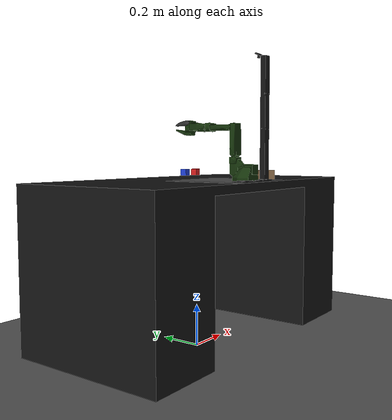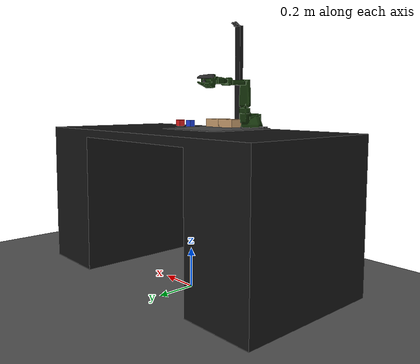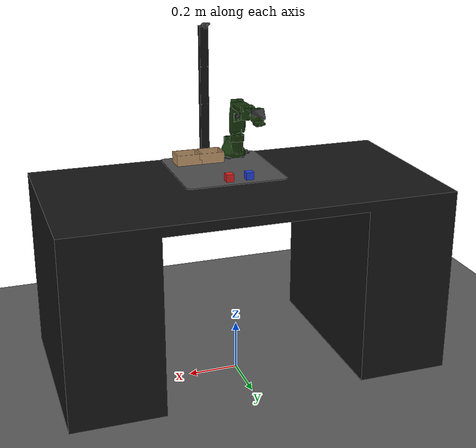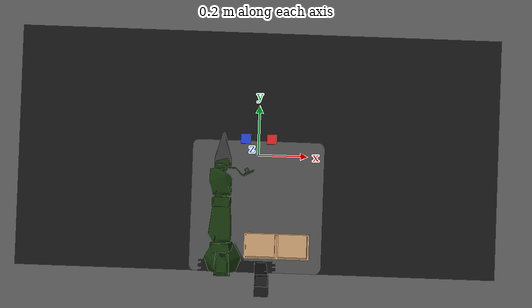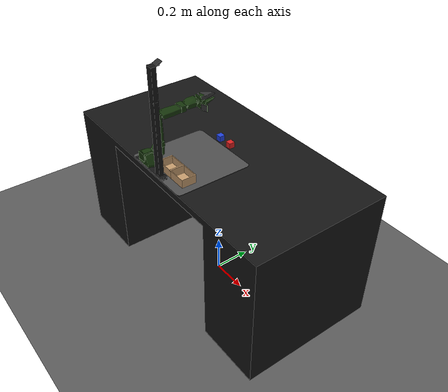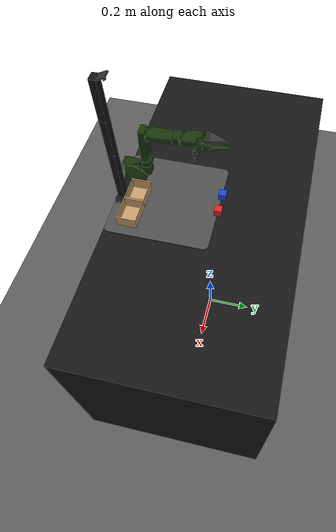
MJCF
<mujoco model="sorting">
  <!--
    Task: sort red cube into right box, blue cube into left box.
    Success: 0.25 per cube grasped, 0.25 per cube correctly sorted (max 1.0).
  -->
  <include file="world_base.xml"/>

  <asset>
    <material name="mat_cube_red"  rgba="0.85 0.12 0.12 1"/>
    <material name="mat_cube_blue" rgba="0.12 0.25 0.85 1"/>
    <material name="mat_box"       rgba="0.76 0.60 0.42 1"/>
  </asset>

  <worldbody>
    <!-- ── Red cube ──────────────────────────────────────────────────── -->
    <body name="cube_red" pos="0.04 0.04 0.845">
      <freejoint name="cube_red_joint"/>
      <geom name="cube_red_geom" type="box" size="0.015 0.015 0.015"
            material="mat_cube_red" mass="0.05"
            contype="1" conaffinity="1" condim="4"/>
    </body>

    <!-- ── Blue cube ─────────────────────────────────────────────────── -->
    <body name="cube_blue" pos="-0.04 0.04 0.845">
      <freejoint name="cube_blue_joint"/>
      <geom name="cube_blue_geom" type="box" size="0.015 0.015 0.015"
            material="mat_cube_blue" mass="0.05"
            contype="1" conaffinity="1" condim="4"/>
    </body>

    <!-- ── Target box (left side) ──────────────────────────────────── -->
    <body name="box_right" pos="0.05 -0.33 0.812">
      <!-- OBJ visual: pos centres mesh on body origin, bottom at body z -->
      <geom name="right_box_virtual" type="mesh" mesh="box_mesh"
            euler="1.5708 0 0" pos="-0.821 -0.039 -0.743"
            rgba="0.76 0.60 0.42 1" contype="0" conaffinity="0"/>
      <!-- Invisible collision: bottom + walls -->
      <geom name="right_box_bottom"     type="box" size="0.0475 0.0355 0.003" pos="-0.032 0.038 0.003"        rgba="0 0 0 0" contype="1" conaffinity="1" friction="0.3 0.05 0.01"/>
      <geom name="right_box_wall_front" type="box" size="0.0475 0.003 0.022" pos="-0.032  0.0772 0.025" rgba="0 0 0 0" contype="1" conaffinity="1" friction="0.1 0.01 0.001"/>
      <geom name="right_box_wall_back"  type="box" size="0.0475 0.003 0.022" pos="-0.032  0.0032 0.025" rgba="0 0 0 0" contype="1" conaffinity="1" friction="0.1 0.01 0.001"/>
      <geom name="right_box_wall_left"  type="box" size="0.003 0.0355 0.022" pos="-0.081 0.0402 0.025" rgba="0 0 0 0" contype="1" conaffinity="1" friction="0.1 0.01 0.001"/>
      <geom name="right_box_wall_right" type="box" size="0.003 0.0355 0.022" pos="0.018 0.0402 0.025" rgba="0 0 0 0" contype="1" conaffinity="1" friction="0.1 0.01 0.001"/>
    </body>

    <!-- ── Target box (right side) ──────────────────────────────────── -->
    <body name="box_left" pos="0.145 -0.33 0.812">
      <!-- OBJ visual: pos centres mesh on body origin, bottom at body z -->
      <geom name="left_box_visual" type="mesh" mesh="box_mesh"
            euler="1.5708 0 0" pos="-0.821 -0.039 -0.743"
            rgba="0.76 0.60 0.42 1" contype="0" conaffinity="0"/>
      <!-- Invisible collision: bottom + walls -->
      <geom name="left_box_bottom"     type="box" size="0.0475 0.0355 0.003" pos="-0.032 0.038 0.003"        rgba="0 0 0 0" contype="1" conaffinity="1" friction="0.3 0.05 0.01"/>
      <geom name="left_box_wall_front" type="box" size="0.0475 0.003 0.022" pos="-0.032  0.0772 0.025" rgba="0 0 0 0" contype="1" conaffinity="1" friction="0.1 0.01 0.001"/>
      <geom name="left_box_wall_back"  type="box" size="0.0475 0.003 0.022" pos="-0.032  0.0032 0.025" rgba="0 0 0 0" contype="1" conaffinity="1" friction="0.1 0.01 0.001"/>
      <geom name="left_box_wall_left"  type="box" size="0.003 0.0355 0.022" pos="-0.081 0.0402 0.025" rgba="0 0 0 0" contype="1" conaffinity="1" friction="0.1 0.01 0.001"/>
      <geom name="left_box_wall_right" type="box" size="0.003 0.0355 0.022" pos="0.018 0.0402 0.025" rgba="0 0 0 0" contype="1" conaffinity="1" friction="0.1 0.01 0.001"/>
    </body>
  </worldbody>

</mujoco>

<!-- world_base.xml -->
<mujoco model="so101_world_base">
  <!-- meshdir now points to assets/ so both so101/ and world/meshes/ are accessible -->
  <compiler angle="radian" autolimits="true" meshdir="../assets"/>

  <option timestep="0.002" gravity="0 0 -9.81" integrator="implicitfast"/>

  <default>
    <joint damping="1.0" armature="0.1"/>
    <geom condim="6" friction="4.0 0.1 0.01" solimp="0.99 0.999 0.001" solref="0.01 1"/>
    <position kp="100" kv="20"/>
  </default>

  <asset>
    <!-- ── Floor texture ────────────────────────────────────────────── -->
    <texture name="tex_floor" type="2d" builtin="checker"
             rgb1="0.3 0.3 0.3" rgb2="0.4 0.4 0.4" width="64" height="64"/>
    <material name="mat_floor" texture="tex_floor" texrepeat="4 4"/>

    <mesh name="desk"                file="world/meshes/desk.obj"                inertia="shell"/>
    <mesh name="desk_mat_mesh"       file="world/meshes/desk_mat.obj"            inertia="shell"/>
    <mesh name="cam_overhead_holder" file="world/meshes/cam_overhead_holder.obj" inertia="shell"/>
    <mesh name="cam_overhead_mesh"   file="world/meshes/cam_overhead.obj"        inertia="shell"/>
    <mesh name="box_mesh"            file="world/meshes/box.obj"                 inertia="shell"/>

    <!-- ── SO-101 meshes ─────────────────────────────────────────────── -->
    <mesh name="base_motor_holder_so101_v1"        file="so101/base_motor_holder_so101_v1.stl"/>
    <mesh name="base_so101_v2"                     file="so101/base_so101_v2.stl"/>
    <mesh name="sts3215_03a_v1"                    file="so101/sts3215_03a_v1.stl"/>
    <mesh name="waveshare_mounting_plate_so101_v2" file="so101/waveshare_mounting_plate_so101_v2.stl"/>
    <mesh name="motor_holder_so101_base_v1"        file="so101/motor_holder_so101_base_v1.stl"/>
    <mesh name="rotation_pitch_so101_v1"           file="so101/rotation_pitch_so101_v1.stl"/>
    <mesh name="upper_arm_so101_v1"                file="so101/upper_arm_so101_v1.stl"/>
    <mesh name="under_arm_so101_v1"                file="so101/under_arm_so101_v1.stl"/>
    <mesh name="motor_holder_so101_wrist_v1"       file="so101/motor_holder_so101_wrist_v1.stl"/>
    <mesh name="sts3215_03a_no_horn_v1"            file="so101/sts3215_03a_no_horn_v1.stl"/>
    <mesh name="wrist_roll_pitch_so101_v2"         file="so101/wrist_roll_pitch_so101_v2.stl"/>
    <mesh name="wrist_roll_follower_so101_v1"      file="so101/wrist_roll_follower_so101_v1_cam.stl"/>
    <mesh name="moving_jaw_so101_v1"               file="so101/moving_jaw_so101_v1.stl"/>
    <mesh name="wrist_cam"                         file="so101/wrist_cam.stl"/>
  </asset>

  <worldbody>
    <!-- ── Lighting ──────────────────────────────────────────────────── -->
    <light name="light_overhead" pos="0 0 2.0" dir="0 0 -1"
           diffuse="0.8 0.8 0.8" specular="0.2 0.2 0.2" castshadow="true"/>
    <light name="light_fill" pos="-0.8 0.5 1.5" dir="0.5 -0.3 -1"
           diffuse="0.3 0.3 0.3" specular="0.0 0.0 0.0" castshadow="false"/>

    <!-- ── Floor ─────────────────────────────────────────────────────── -->
    <geom name="floor" type="plane" size="2 2 0.1" material="mat_floor"
          contype="1" conaffinity="1"/>

    <!-- ── Desk: OBJ visual + invisible collision surface ───────────────
         euler="1.5708 0 0" rotates Y-up OBJ → Z-up MuJoCo
         pos="-0.75 -0.375 0.07" centres desk and puts top at z=0.81     -->
    <geom name="desk_visual" type="mesh" mesh="desk"
          euler="1.5708 0 0" pos="-0.75 -0.375 0.07"
          rgba="0.08 0.08 0.08 1" contype="0" conaffinity="0"/>
    <geom name="desk_collision" type="box" size="0.75 0.375 0.005"
          pos="0 0 0.805" rgba="0 0 0 0" contype="1" conaffinity="1"/>

    <!-- ── Mat: OBJ visual + invisible collision surface ─────────────── -->
    <geom name="mat_visual" type="mesh" mesh="desk_mat_mesh"
          euler="1.5708 0 0" pos="-0.75 -0.375 0.07"
          rgba="0.302 0.302 0.302 1" contype="0" conaffinity="0"/>
    <geom name="mat_collision" type="cylinder" size="0.18 0.002"
          pos="0 0 0.812" rgba="0 0 0 0" contype="1" conaffinity="1"/>

    <!-- ── Camera holder: OBJ visual only ────────────────────────────── -->
    <geom name="cam_overhead_holder_visual" type="mesh" mesh="cam_overhead_holder"
          euler="1.5708 0 0" pos="-0.75 -0.375 0.07"
          rgba="0.078 0.078 0.078 1" contype="0" conaffinity="0"/>

    <!-- ── Overhead camera body: OBJ visual only ─────────────────────── -->
    <geom name="cam_overhead_visual" type="mesh" mesh="cam_overhead_mesh"
          euler="1.5708 0 0" pos="-0.75 -0.375 0.07"
          rgba="0.15 0.15 0.15 1" contype="0" conaffinity="0"/>

    <!-- ── SO-101 robot ───────────────────────────────────────────────
         pos: robot mount point on desk surface (z=0.81).              -->
    <body name="robot_base" pos="-0.1 -0.35 0.818" euler="0 0 1.5708">
      <geom pos="-0.00636471 -9.94414e-05 -0.0024" quat="0.499998 0.5 0.500002 0.5"
            type="mesh" rgba="0.08 0.2 0.04 1" mesh="base_motor_holder_so101_v1"/>
      <geom pos="-0.00636471 -8.97657e-09 -0.0024" quat="0.499998 0.5 0.500002 0.5"
            type="mesh" rgba="0.08 0.2 0.04 1" mesh="base_so101_v2"/>
      <geom pos="0.0263353 -8.97657e-09 0.0437" quat="1 0 0 0"
            type="mesh" rgba="0.08 0.2 0.04 1" mesh="sts3215_03a_v1"/>
      <geom pos="-0.0309827 -0.000199441 0.0474" quat="0.499998 0.5 0.500002 0.5"
            type="mesh" rgba="0.08 0.2 0.04 1" mesh="waveshare_mounting_plate_so101_v2"/>

      <body name="shoulder_link" pos="0.0388353 -8.97657e-09 0.0624"
            quat="1.76036e-12 1.32679e-06 -1 -1.32679e-06">
        <inertial pos="-0.0307604 -1.66727e-05 -0.0252713"
                  quat="0.999865 0.00149563 0.0097084 0.0132043"
                  mass="0.100006" diaginertia="8.37836e-05 8.10388e-05 2.39552e-05"/>
        <joint name="shoulder_pan" pos="0 0 0" axis="0 0 1"
               range="-1.91986 1.91986" actuatorfrcrange="-50 50"/>
        <geom pos="-0.0303992 0.000422241 -0.0417" quat="0.499998 0.5 0.5 -0.500002"
              type="mesh" rgba="0.08 0.2 0.04 1" mesh="sts3215_03a_v1"/>
        <geom pos="-0.0675992 -0.000177759 0.0158499" quat="0.499998 0.5 -0.5 0.500002"
              type="mesh" rgba="0.08 0.2 0.04 1" mesh="motor_holder_so101_base_v1"/>
        <geom pos="0.0122008 2.22413e-05 0.0464" quat="0.707105 -0.707108 0 0"
              type="mesh" rgba="0.08 0.2 0.04 1" mesh="rotation_pitch_so101_v1"/>

        <body name="upper_arm_link" pos="-0.0303992 -0.0182778 -0.0542"
              quat="0.499998 -0.5 -0.5 -0.500002">
          <inertial pos="-0.0898471 -0.00838224 0.0184089"
                    quat="0.453195 0.454063 0.541891 0.542951"
                    mass="0.103" diaginertia="0.000150873 0.000142487 3.72451e-05"/>
          <joint name="shoulder_lift" pos="0 0 0" axis="0 0 1"
                 range="-1.74533 1.74533" actuatorfrcrange="-10 10"/>
          <geom pos="-0.11257 -0.0155 0.0187"
                quat="9.38184e-07 -0.707105 0.707108 -9.38187e-07"
                type="mesh" rgba="0.08 0.2 0.04 1" mesh="sts3215_03a_v1"/>
          <geom pos="-0.065085 0.012 0.0182" quat="1.32679e-06 1 0 0"
                type="mesh" rgba="0.08 0.2 0.04 1" mesh="upper_arm_so101_v1"/>

          <body name="lower_arm_link" pos="-0.11257 -0.028 0" quat="0.707105 0 0 0.707108">
            <inertial pos="-0.0980701 0.00324376 0.0182831"
                      quat="0.510729 0.517006 0.487966 0.483477"
                      mass="0.104" diaginertia="0.000160262 0.000145304 2.83125e-05"/>
            <joint name="elbow_flex" pos="0 0 0" axis="0 0 1"
                   range="-1.69 1.69" actuatorfrcrange="-10 10"/>
            <geom pos="-0.0648499 -0.032 0.0182" quat="1.32679e-06 1 0 0"
                  type="mesh" rgba="0.08 0.2 0.04 1" mesh="under_arm_so101_v1"/>
            <geom pos="-0.0648499 -0.032 0.018" quat="1.32679e-06 -1 0 0"
                  type="mesh" rgba="0.08 0.2 0.04 1" mesh="motor_holder_so101_wrist_v1"/>
            <geom pos="-0.1224 0.0052 0.0187"
                  quat="1.76034e-12 -1.32679e-06 1 -1.32679e-06"
                  type="mesh" rgba="0.08 0.2 0.04 1" mesh="sts3215_03a_v1"/>

            <body name="wrist_link" pos="-0.1349 0.0052 0" quat="0.707105 0 0 -0.707108">
              <inertial pos="-0.000103312 -0.0386143 0.0281156"
                        quat="0.967143 0.254226 0.00162226 -0.000146307"
                        mass="0.079" diaginertia="3.68265e-05 2.74474e-05 1.89434e-05"/>
              <joint name="wrist_flex" pos="0 0 0" axis="0 0 1"
                     range="-1.65806 1.65806" actuatorfrcrange="-10 10"/>
              <geom pos="0 -0.0424 0.0306" quat="0.499998 0.5 0.5 -0.500002"
                    type="mesh" rgba="0.08 0.2 0.04 1" mesh="sts3215_03a_no_horn_v1"/>
              <geom pos="0 -0.028 0.0181" quat="0.499998 -0.5 -0.5 -0.500002"
                    type="mesh" rgba="0.08 0.2 0.04 1" mesh="wrist_roll_pitch_so101_v2"/>

              <body name="gripper_link" pos="0 -0.0611 0.0181"
                    quat="0.0172101 -0.0172081 0.706899 0.706896">
                <inertial pos="0.000213627 0.000245138 -0.025187"
                          quat="0.600717 0.355993 0.35863 0.61951"
                          mass="0.087" diaginertia="4.33735e-05 3.77229e-05 2.42839e-05"/>
                <joint name="wrist_roll" pos="0 0 0" axis="0 0 1"
                       range="-2.74385 2.84121" actuatorfrcrange="-10 10"/>
                <geom pos="0.0077 0.0001 -0.0234" quat="0.707105 -0.707108 0 0"
                      type="mesh" rgba="0.08 0.2 0.04 1" mesh="sts3215_03a_v1"/>
                <geom pos="0 -0.000218214 0.000949706" quat="1.32679e-06 -1 0 0"
                      type="mesh" rgba="0.08 0.2 0.04 1" mesh="wrist_roll_follower_so101_v1"
                      contype="0" conaffinity="0"/>
                <geom name="fixed_finger_col" type="box" size="0.002 0.006 0.008"
                      pos="-0.0099 -0.00430 -0.09860"
                      rgba="0 0 0 0" contype="1" conaffinity="1"/>
                <geom pos="0 0 0" quat="1.32679e-06 -1 0 0"
                      type="mesh" rgba="0.2 0.2 0.2 1" mesh="wrist_cam"/>

                <!-- Wrist camera attached to cam mount on wrist_roll_follower -->
                <camera name="camera_wrist" pos="0 -0.0666 -0.00613" euler="0.436 0 3.141592" fovy="69.5"/>

                <body name="moving_jaw_so101_v1_link" pos="0.0202 0.0188 -0.0234"
                      quat="0.707105 0.707108 -1.85362e-08 1.85363e-08">
                  <inertial pos="-0.00157495 -0.0300244 0.0192755"
                            quat="0.695265 0.717965 -0.0245618 -0.0230097"
                            mass="0.012" diaginertia="6.63582e-06 5.29092e-06 1.86523e-06"/>
                  <joint name="gripper" pos="0 0 0" axis="0 0 1"
                         range="-0.174533 1.74533" actuatorfrcrange="-10 10"/>
                  <geom pos="0 0 0.0189" quat="1 0 0 0"
                        type="mesh" rgba="0.2 0.2 0.2 1" mesh="moving_jaw_so101_v1"
                        contype="0" conaffinity="0"/>
                  <geom name="moving_finger_col" type="box" size="0.002 0.008 0.006"
                        pos="-0.01 -0.078 0.02"
                        rgba="0 0 0 0" contype="1" conaffinity="1"/>
                </body>
              </body>
            </body>
          </body>
        </body>
      </body>
    </body>

    <!-- ── Cameras ───────────────────── ─────────────────────────── 0.768599-->

    <camera name="camera_overhead" pos="0 -0.1 1.28200246" euler="0 0 3.141592" fovy="69.5"/>
  </worldbody>

  <!-- ── Disable self-collision between adjacent arm links ───────── -->
  <contact>
    <exclude body1="robot_base"    body2="shoulder_link"/>
    <exclude body1="shoulder_link" body2="upper_arm_link"/>
    <exclude body1="upper_arm_link" body2="lower_arm_link"/>
    <exclude body1="lower_arm_link" body2="wrist_link"/>
    <exclude body1="wrist_link"    body2="gripper_link"/>
    <exclude body1="gripper_link"  body2="moving_jaw_so101_v1_link"/>
  </contact>

  <!-- ── Position actuators ────────────────────────────────────────── -->
  <actuator>
    <position name="act_shoulder_pan"  joint="shoulder_pan"  ctrlrange="-1.91986  1.91986"/>
    <position name="act_shoulder_lift" joint="shoulder_lift" ctrlrange="-1.74533  1.74533"/>
    <position name="act_elbow_flex"    joint="elbow_flex"    ctrlrange="-1.69     1.69"/>
    <position name="act_wrist_flex"    joint="wrist_flex"    ctrlrange="-1.65806  1.65806"/>
    <position name="act_wrist_roll"    joint="wrist_roll"    ctrlrange="-2.74385  2.84121"/>
    <position name="act_gripper"       joint="gripper"       ctrlrange="-0.174533 1.74533"/>
  </actuator>

</mujoco>
